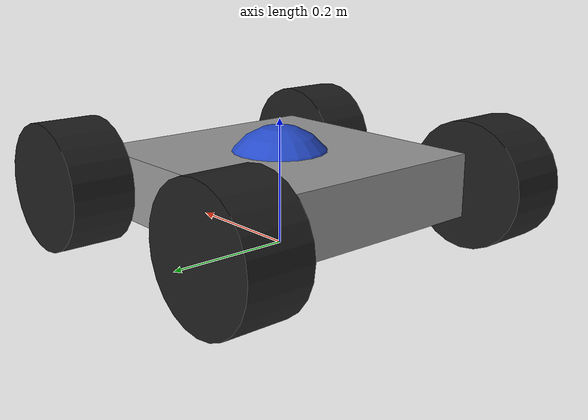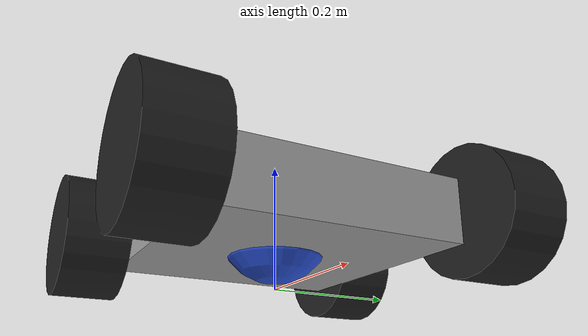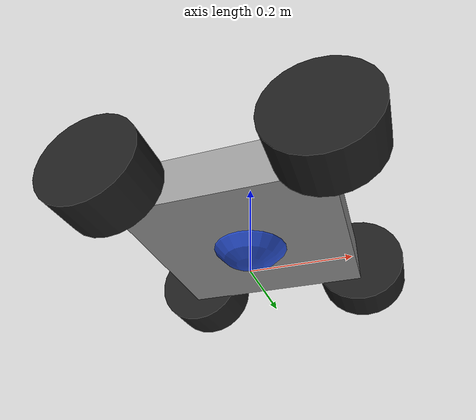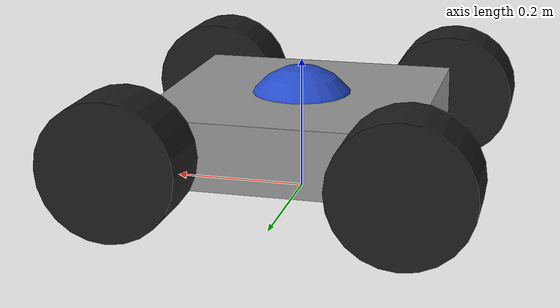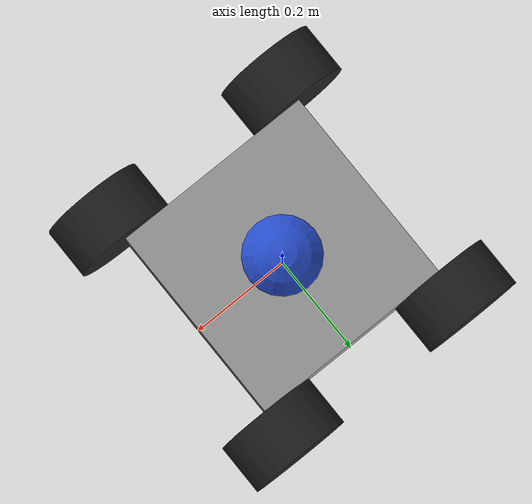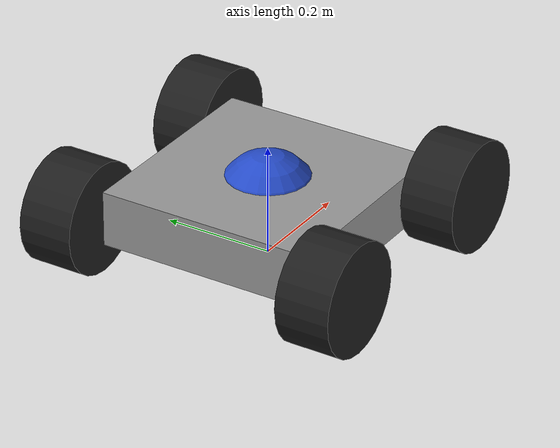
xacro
<?xml version="1.0"?>
<!-- White Robot Simulator-->
<robot name="robot" xmlns:xacro="http://www.ros.org/wiki/xacro">

<xacro:property name="PI" value="3.1415926535897931"/>

<xacro:property name="chassisHeight" value="0.1"/>
<xacro:property name="chassisLength" value="0.4"/>
<xacro:property name="chassisWidth" value="0.4"/>
<xacro:property name="chassisMass" value="50"/>

<xacro:property name="wheelWidth" value="0.1"/>
<xacro:property name="wheelRadius" value="0.1"/>
<xacro:property name="wheelPos" value="0.2"/>
<xacro:property name="wheelMass" value="5"/>

<xacro:property name="cameraRadius" value="0.09"/>
<xacro:property name="cameraMass" value="0.05"/>

<xacro:include filename="$(find robot_description)/urdf/robot.gazebo" />
<xacro:include filename="$(find robot_description)/urdf/materials.xacro" />
<xacro:include filename="$(find robot_description)/urdf/macros.xacro" />

<link name="footprint" />

<joint name="base_joint" type="fixed">
  <parent link="footprint"/>
  <child link="chassis"/>
</joint>

<link name='chassis'>
  <collision>
    <origin xyz="0 0 ${wheelRadius}" rpy="0 0 0"/>
    <geometry>
      <box size="${chassisLength} ${chassisWidth} ${chassisHeight}"/>
    </geometry>
  </collision>
  <visual>
    <origin xyz="0 0 ${wheelRadius}" rpy="0 0 0"/>
    <geometry>
      <box size="${chassisLength} ${chassisWidth} ${chassisHeight}"/>
    </geometry>
    <material name="grey"/>
  </visual>
  <inertial>
    <origin xyz="0 0 ${wheelRadius}" rpy="0 0 0"/>
    <mass value="${chassisMass}"/>
    <box_inertia m="${chassisMass}" x="${chassisLength}" y="${chassisWidth}" z="${chassisHeight}"/>
  </inertial>
</link>

<wheel lr="left" fb = "front" tY="1" tX = "0.5"/>
<wheel lr="left" fb = "back" tY="1" tX = "-0.5"/>
<wheel lr="right" fb = "front" tY="-1" tX = "0.5"/>
<wheel lr="right" fb = "back" tY="-1" tX = "-0.5"/>

<joint name="camera" type="fixed">
    <origin xyz="0 0 ${chassisHeight}" rpy="0 0 0"/>
    <parent link="chassis"/>
    <child link="camera"/>
  </joint>

<link name="camera">
  <collision>
    <origin xyz="0 0 0" rpy="0 0 0"/>
    <geometry>
      <sphere radius="${cameraRadius}"/>
    </geometry>
  </collision>

  <visual>
    <origin xyz="0 0 0" rpy="0 0 0"/>
    <geometry>
      <sphere radius="${cameraRadius}"/>
    </geometry>
    <material name="blue"/>
  </visual>

  <inertial>
    <mass value="${cameraMass}" />
    <origin xyz="0 0 0" rpy="0 0 0"/>
     <sphere_inertia m="${cameraMass}" r="${cameraRadius}"/>
  </inertial>
</link>

</robot>

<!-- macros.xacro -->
<robot name="robot" xmlns:xacro="http://www.ros.org/wiki/xacro">

<macro name="cylinder_inertia" params="m r h">
  <inertia  ixx="${m*(3*r*r+h*h)/12}" ixy = "0" ixz = "0"
    iyy="${m*(3*r*r+h*h)/12}" iyz = "0"
    izz="${m*r*r/2}"
  />
</macro>

<macro name="box_inertia" params="m x y z">
  <inertia  ixx="${m*(y*y+z*z)/12}" ixy = "0" ixz = "0"
    iyy="${m*(x*x+z*z)/12}" iyz = "0"
    izz="${m*(x*x+z*z)/12}"
  />
</macro>

<macro name="sphere_inertia" params="m r">
  <inertia  ixx="${2*m*r*r/5}" ixy = "0" ixz = "0"
    iyy="${2*m*r*r/5}" iyz = "0"
    izz="${2*m*r*r/5}"
  />
</macro>

<macro name="wheel" params="lr fb tY tX">

<link name="${lr}_${fb}_wheel">
  <collision>
    <origin xyz="0 0 0" rpy="0 ${PI/2} ${PI/2}" />
    <geometry>
      <cylinder length="${wheelWidth}" radius="${wheelRadius}"/>
    </geometry>
  </collision>

  <visual>
    <origin xyz="0 0 0" rpy="0 ${PI/2} ${PI/2}" />
    <geometry>
      <cylinder length="${wheelWidth}" radius="${wheelRadius}"/>
    </geometry>
    <material name="black"/>
  </visual>

  <inertial>
    <origin xyz="0 0 0" rpy="0 ${PI/2} ${PI/2}" />
    <mass value="${wheelMass}"/>
    <cylinder_inertia m="${wheelMass}" r="${wheelRadius}" h="${wheelWidth}"/>
  </inertial>
</link>

<gazebo reference="${lr}_${fb}_wheel">
  <mu1 value="1.0"/>
  <mu2 value="1.0"/>
  <kp  value="10000000.0" />
  <kd  value="1.0" />
  <fdir1 value= "0 0 0"/>
  <material>Gazebo/Black</material>
</gazebo>

<joint name="${lr}_${fb}_wheel_hinge" type="continuous">
  <parent link="chassis"/>
  <child link="${lr}_${fb}_wheel"/>
  <origin xyz="${tX*wheelPos+tX*chassisLength/2} ${tY*wheelWidth/2+tY*chassisWidth/2} ${wheelRadius}" rpy="0 0 0" />
  <axis xyz="0 1 0" rpy="0 0 0" />
  <limit effort="100" velocity="100"/>
  <joint_properties damping="0.0" friction="0.0"/>
</joint>

<transmission name="${lr}_${fb}_trans">
  <type>transmission_interface/SimpleTransmission</type>
  <joint name="${lr}_${fb}_wheel_hinge"><hardwareInterface>EffortJointInterface</hardwareInterface> </joint>
  <actuator name="${lr}_${fb}_Motor">
    <hardwareInterface>EffortJointInterface</hardwareInterface>
    <mechanicalReduction>10</mechanicalReduction>
  </actuator>
</transmission>

</macro>

</robot>
